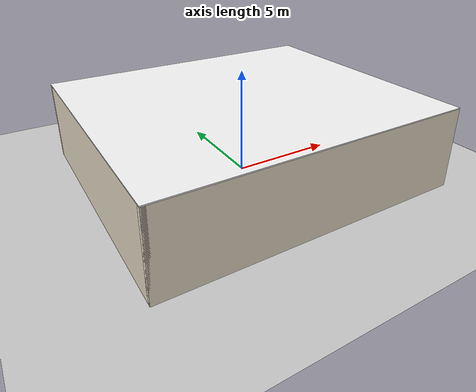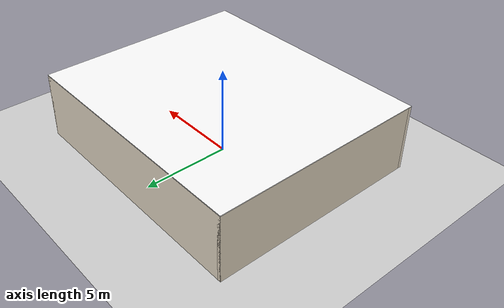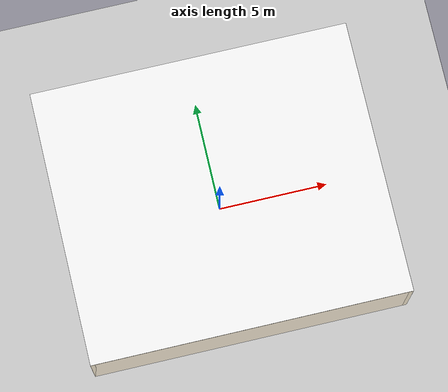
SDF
<sdf version="1.9">
 <world name="mcdonalds_interior">
  <physics name="1ms" type="ode">
   <max_step_size>0.001</max_step_size>
   <real_time_factor>1.0</real_time_factor>
  </physics>
  <plugin filename="gz-sim-physics-system" name="gz::sim::systems::Physics"/>
  <plugin filename="gz-sim-scene-broadcaster-system" name="gz::sim::systems::SceneBroadcaster"/>
  <plugin filename="gz-sim-user-commands-system" name="gz::sim::systems::UserCommands"/>
  <plugin filename="gz-sim-sensors-system" name="gz::sim::systems::Sensors">
   <render_engine>ogre2</render_engine>
  </plugin>
  <scene>
   <ambient>0.6 0.6 0.6 1.0</ambient>
   <background>0.4 0.4 0.4 1.0</background>
   <shadows>true</shadows>
  </scene>
  <include><uri>https://fuel.gazebosim.org/1.0/openrobotics/models/Ground Plane</uri></include>
  <light name="ambient_light" type="directional">
   <pose>0 0 10 0 0 0</pose>
   <diffuse>0.9 0.85 0.75 1</diffuse>
   <specular>0.3 0.3 0.3 1</specular>
   <direction>0 0 -1</direction>
   <cast_shadows>false</cast_shadows>
   <attenuation>
    <range>100</range>
    <constant>0.9</constant>
    <linear>0.01</linear>
    <quadratic>0.001</quadratic>
   </attenuation>
  </light>
  <light name="spot_1" type="spot">
   <pose>-4.0 -3.0 3.8 0 1.5708 0</pose>
   <diffuse>1.0 0.95 0.8 1</diffuse>
   <specular>0.4 0.4 0.4 1</specular>
   <attenuation>
    <range>8</range>
    <constant>0.4</constant>
    <linear>0.05</linear>
    <quadratic>0.01</quadratic>
   </attenuation>
   <direction>0 0 -1</direction>
   <spot><inner_angle>0.6</inner_angle><outer_angle>1.0</outer_angle><falloff>1.5</falloff></spot>
   <cast_shadows>false</cast_shadows>
  </light>
  <light name="spot_2" type="spot">
   <pose>-4.0 0.0 3.8 0 1.5708 0</pose>
   <diffuse>1.0 0.95 0.8 1</diffuse>
   <specular>0.4 0.4 0.4 1</specular>
   <attenuation>
    <range>8</range>
    <constant>0.4</constant>
    <linear>0.05</linear>
    <quadratic>0.01</quadratic>
   </attenuation>
   <direction>0 0 -1</direction>
   <spot><inner_angle>0.6</inner_angle><outer_angle>1.0</outer_angle><falloff>1.5</falloff></spot>
   <cast_shadows>false</cast_shadows>
  </light>
  <light name="spot_3" type="spot">
   <pose>-4.0 3.0 3.8 0 1.5708 0</pose>
   <diffuse>1.0 0.95 0.8 1</diffuse>
   <specular>0.4 0.4 0.4 1</specular>
   <attenuation>
    <range>8</range>
    <constant>0.4</constant>
    <linear>0.05</linear>
    <quadratic>0.01</quadratic>
   </attenuation>
   <direction>0 0 -1</direction>
   <spot><inner_angle>0.6</inner_angle><outer_angle>1.0</outer_angle><falloff>1.5</falloff></spot>
   <cast_shadows>false</cast_shadows>
  </light>
  <light name="spot_4" type="spot">
   <pose>0.0 -3.0 3.8 0 1.5708 0</pose>
   <diffuse>1.0 0.95 0.8 1</diffuse>
   <specular>0.4 0.4 0.4 1</specular>
   <attenuation>
    <range>8</range>
    <constant>0.4</constant>
    <linear>0.05</linear>
    <quadratic>0.01</quadratic>
   </attenuation>
   <direction>0 0 -1</direction>
   <spot><inner_angle>0.6</inner_angle><outer_angle>1.0</outer_angle><falloff>1.5</falloff></spot>
   <cast_shadows>false</cast_shadows>
  </light>
  <light name="spot_5" type="spot">
   <pose>0.0 0.0 3.8 0 1.5708 0</pose>
   <diffuse>1.0 0.95 0.8 1</diffuse>
   <specular>0.4 0.4 0.4 1</specular>
   <attenuation>
    <range>8</range>
    <constant>0.4</constant>
    <linear>0.05</linear>
    <quadratic>0.01</quadratic>
   </attenuation>
   <direction>0 0 -1</direction>
   <spot><inner_angle>0.6</inner_angle><outer_angle>1.0</outer_angle><falloff>1.5</falloff></spot>
   <cast_shadows>false</cast_shadows>
  </light>
  <light name="spot_6" type="spot">
   <pose>0.0 3.0 3.8 0 1.5708 0</pose>
   <diffuse>1.0 0.95 0.8 1</diffuse>
   <specular>0.4 0.4 0.4 1</specular>
   <attenuation>
    <range>8</range>
    <constant>0.4</constant>
    <linear>0.05</linear>
    <quadratic>0.01</quadratic>
   </attenuation>
   <direction>0 0 -1</direction>
   <spot><inner_angle>0.6</inner_angle><outer_angle>1.0</outer_angle><falloff>1.5</falloff></spot>
   <cast_shadows>false</cast_shadows>
  </light>
  <light name="spot_7" type="spot">
   <pose>4.0 -1.5 3.8 0 1.5708 0</pose>
   <diffuse>1.0 0.95 0.8 1</diffuse>
   <specular>0.4 0.4 0.4 1</specular>
   <attenuation>
    <range>8</range>
    <constant>0.4</constant>
    <linear>0.05</linear>
    <quadratic>0.01</quadratic>
   </attenuation>
   <direction>0 0 -1</direction>
   <spot><inner_angle>0.6</inner_angle><outer_angle>1.0</outer_angle><falloff>1.5</falloff></spot>
   <cast_shadows>false</cast_shadows>
  </light>
  <light name="spot_8" type="spot">
   <pose>4.0 1.5 3.8 0 1.5708 0</pose>
   <diffuse>1.0 0.95 0.8 1</diffuse>
   <specular>0.4 0.4 0.4 1</specular>
   <attenuation>
    <range>8</range>
    <constant>0.4</constant>
    <linear>0.05</linear>
    <quadratic>0.01</quadratic>
   </attenuation>
   <direction>0 0 -1</direction>
   <spot><inner_angle>0.6</inner_angle><outer_angle>1.0</outer_angle><falloff>1.5</falloff></spot>
   <cast_shadows>false</cast_shadows>
  </light>
  <model name="floor">
   <static>true</static>
   <pose>0 0 -0.025 0 0 0</pose>
   <link name="link">
    <collision name="col">
     <geometry><box><size>14 12 0.05</size></box></geometry>
     <surface><friction><ode><mu>0.8</mu><mu2>0.8</mu2></ode></friction></surface>
    </collision>
    <visual name="vis">
     <geometry><box><size>14 12 0.05</size></box></geometry>
     <material>
      <ambient>0.85 0.80 0.70 1</ambient>
      <diffuse>0.85 0.80 0.70 1</diffuse>
      <specular>0.15 0.15 0.15 1</specular>
     </material>
    </visual>
   </link>
  </model>
  <model name="wall_north">
   <static>true</static>
   <pose>0 6.1 1.9 0 0 0</pose>
   <link name="link">
    <collision name="col"><geometry><box><size>14.4 0.2 3.8</size></box></geometry></collision>
    <visual name="vis">
     <geometry><box><size>14.4 0.2 3.8</size></box></geometry>
     <material>
      <ambient>0.95 0.90 0.82 1</ambient>
      <diffuse>0.95 0.90 0.82 1</diffuse>
      <specular>0.05 0.05 0.05 1</specular>
     </material>
    </visual>
   </link>
  </model>
  <model name="wall_south">
   <static>true</static>
   <pose>0 -6.1 1.9 0 0 0</pose>
   <link name="link">
    <collision name="col"><geometry><box><size>14.4 0.2 3.8</size></box></geometry></collision>
    <visual name="vis">
     <geometry><box><size>14.4 0.2 3.8</size></box></geometry>
     <material>
      <ambient>0.95 0.90 0.82 1</ambient>
      <diffuse>0.95 0.90 0.82 1</diffuse>
      <specular>0.05 0.05 0.05 1</specular>
     </material>
    </visual>
   </link>
  </model>
  <model name="wall_east">
   <static>true</static>
   <pose>7.1 0 1.9 0 0 0</pose>
   <link name="link">
    <collision name="col"><geometry><box><size>0.2 12.4 3.8</size></box></geometry></collision>
    <visual name="vis">
     <geometry><box><size>0.2 12.4 3.8</size></box></geometry>
     <material>
      <ambient>0.92 0.87 0.78 1</ambient>
      <diffuse>0.92 0.87 0.78 1</diffuse>
      <specular>0.05 0.05 0.05 1</specular>
     </material>
    </visual>
   </link>
  </model>
  <model name="wall_west">
   <static>true</static>
   <pose>-7.1 0 1.9 0 0 0</pose>
   <link name="link">
    <collision name="col"><geometry><box><size>0.2 12.4 3.8</size></box></geometry></collision>
    <visual name="vis">
     <geometry><box><size>0.2 12.4 3.8</size></box></geometry>
     <material>
      <ambient>0.92 0.87 0.78 1</ambient>
      <diffuse>0.92 0.87 0.78 1</diffuse>
      <specular>0.05 0.05 0.05 1</specular>
     </material>
    </visual>
   </link>
  </model>
  <model name="ceiling">
   <static>true</static>
   <pose>0 0 3.825 0 0 0</pose>
   <link name="link">
    <visual name="vis">
     <geometry><box><size>14.4 12.4 0.05</size></box></geometry>
     <material>
      <ambient>0.98 0.98 0.98 1</ambient>
      <diffuse>0.98 0.98 0.98 1</diffuse>
      <specular>0.02 0.02 0.02 1</specular>
     </material>
    </visual>
   </link>
  </model>
  <model name="service_counter">
   <static>true</static>
   <pose>-5.8 0 0.55 0 0 0</pose>
   <link name="link">
    <collision name="col"><geometry><box><size>1.2 6.0 1.1</size></box></geometry></collision>
    <visual name="vis">
     <geometry><box><size>1.2 6.0 1.1</size></box></geometry>
     <material>
      <ambient>0.80 0.10 0.10 1</ambient>
      <diffuse>0.80 0.10 0.10 1</diffuse>
      <specular>0.20 0.20 0.20 1</specular>
     </material>
    </visual>
    <visual name="vis_top">
     <pose>0 0 0.575 0 0 0</pose>
     <geometry><box><size>1.25 6.05 0.05</size></box></geometry>
     <material>
      <ambient>0.95 0.95 0.95 1</ambient>
      <diffuse>0.95 0.95 0.95 1</diffuse>
      <specular>0.3 0.3 0.3 1</specular>
     </material>
    </visual>
   </link>
  </model>
  <model name="trash_bin">
   <static>true</static>
   <pose>5.8 -5.2 0 0 0 0</pose>
   <link name="link">
    <collision name="col">
     <geometry><cylinder><radius>0.18</radius><length>0.70</length></cylinder></geometry>
    </collision>
    <visual name="vis">
     <pose>0 0 0.35 0 0 0</pose>
     <geometry><cylinder><radius>0.18</radius><length>0.70</length></cylinder></geometry>
     <material>
      <ambient>0.15 0.15 0.15 1</ambient>
      <diffuse>0.15 0.15 0.15 1</diffuse>
      <specular>0.2 0.2 0.2 1</specular>
     </material>
    </visual>
    <visual name="vis_lid">
     <pose>0 0 0.72 0 0 0</pose>
     <geometry><cylinder><radius>0.20</radius><length>0.04</length></cylinder></geometry>
     <material>
      <ambient>0.80 0.10 0.10 1</ambient>
      <diffuse>0.80 0.10 0.10 1</diffuse>
      <specular>0.1 0.1 0.1 1</specular>
     </material>
    </visual>
   </link>
  </model>
  <model name="trash_bin_2">
   <static>true</static>
   <pose>5.8 5.2 0 0 0 0</pose>
   <link name="link">
    <collision name="col">
     <geometry><cylinder><radius>0.18</radius><length>0.70</length></cylinder></geometry>
    </collision>
    <visual name="vis">
     <pose>0 0 0.35 0 0 0</pose>
     <geometry><cylinder><radius>0.18</radius><length>0.70</length></cylinder></geometry>
     <material>
      <ambient>0.15 0.15 0.15 1</ambient>
      <diffuse>0.15 0.15 0.15 1</diffuse>
      <specular>0.2 0.2 0.2 1</specular>
     </material>
    </visual>
    <visual name="vis_lid">
     <pose>0 0 0.72 0 0 0</pose>
     <geometry><cylinder><radius>0.20</radius><length>0.04</length></cylinder></geometry>
     <material>
      <ambient>0.80 0.10 0.10 1</ambient>
      <diffuse>0.80 0.10 0.10 1</diffuse>
      <specular>0.1 0.1 0.1 1</specular>
     </material>
    </visual>
   </link>
  </model>
 </world>
</sdf>
